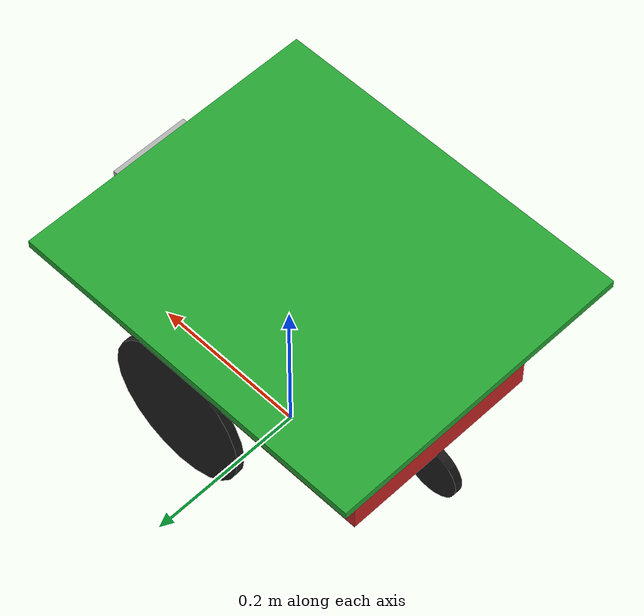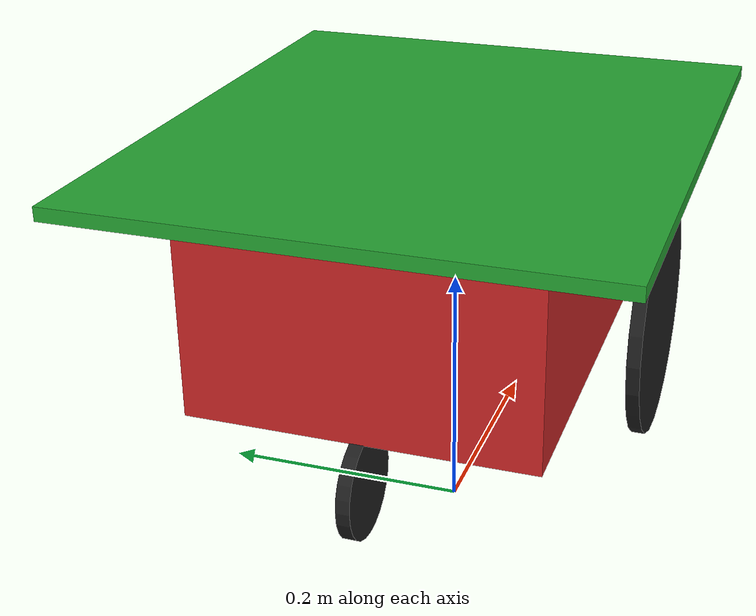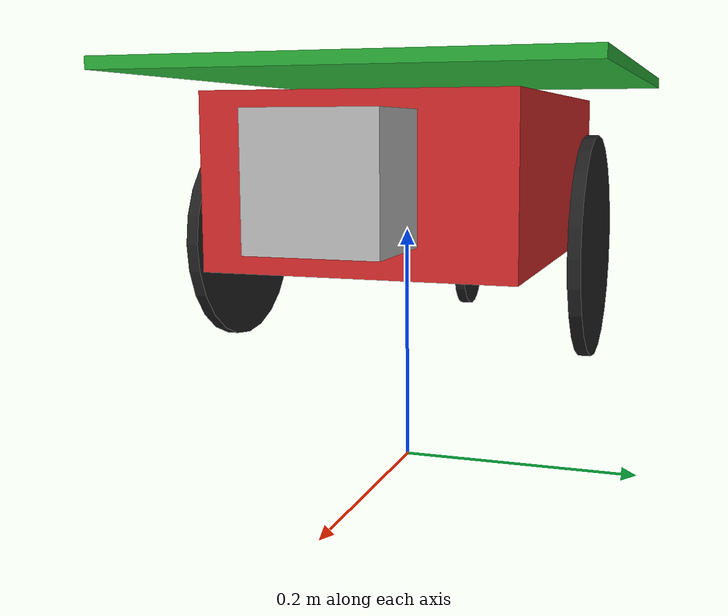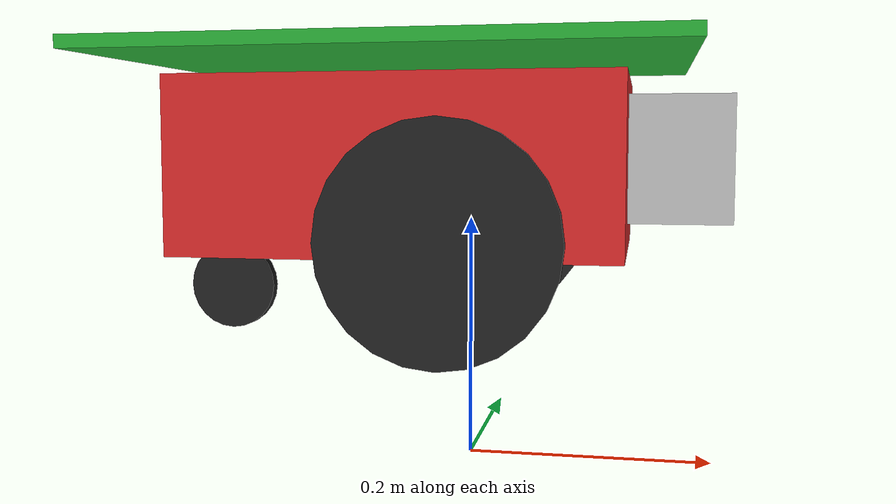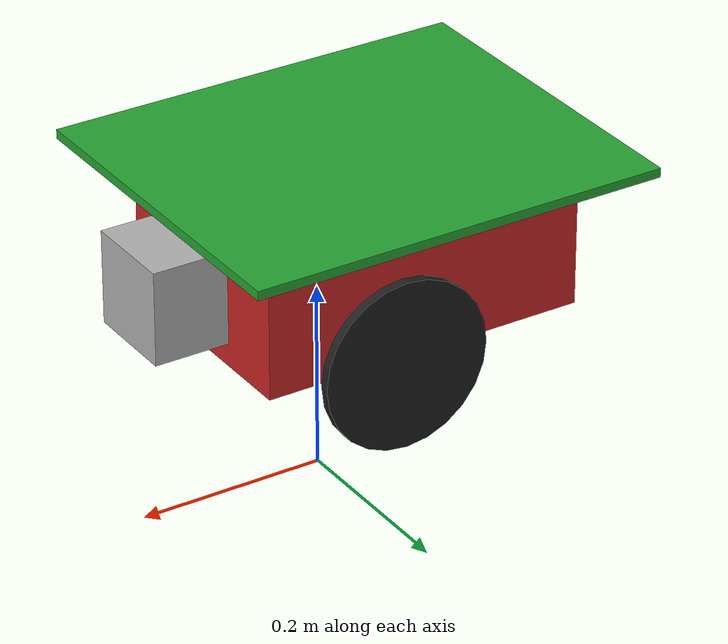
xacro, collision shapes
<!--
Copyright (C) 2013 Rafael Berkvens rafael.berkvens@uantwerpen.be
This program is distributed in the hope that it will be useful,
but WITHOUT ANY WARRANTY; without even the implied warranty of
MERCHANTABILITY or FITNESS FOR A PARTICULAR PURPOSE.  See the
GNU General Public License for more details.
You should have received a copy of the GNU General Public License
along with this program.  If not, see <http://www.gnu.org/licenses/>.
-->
<?xml version="1.0"?>

<robot name="pioneer3dx" xmlns:xacro="http://ros.org/wiki/xacro">

<xacro:include filename="$(find udm_pioneer_p3dx)/urdf/pioneer3dx_wheel.xacro"/>

  <!-- ground truth -->
	<gazebo>
		<plugin name="p3d_base_controller" filename="libgazebo_ros_p3d.so">
			<always_on>true</always_on>
			<update_rate>100.0</update_rate>
			<body_name>base_footprint</body_name>
			<topic_name>base_pose_ground_truth</topic_name>
			<gaussian_noise>0.01</gaussian_noise>
			<frame_name>map</frame_name>
			<!-- initialize odometry for fake localization -->
			<xyz_offset>0 0 0</xyz_offset>
			<rpy_offset>0 0 0</rpy_offset>
		</plugin>
	</gazebo>

    <gazebo reference="base_link">
   	<material>Gazebo/RedBright</material>
   </gazebo>

   <!-- Base footprint -->
   <link name="base_footprint"/>

	<joint name="base_joint" type="fixed">
    	<parent link="base_footprint"/>
    	<child link="base_link" />
    	<origin xyz="0.0 0.0 0.1" rpy="0 0 0"/>
  	</joint>

  <!-- chassis -->
	<link name="base_link">
		<inertial>
			<mass value="3.5" />
			<origin xyz="-0.05 0 0" />
			<inertia ixx="1" ixy="0" ixz="0" iyy="1" iyz="0" izz="1" />
		</inertial>

		<visual>
			<origin xyz="-0.045 0 0.148" rpy="0 0 0" />
			<geometry>
				<mesh filename="package://udm_pioneer_p3dx/p3dx_description/meshes/chassis.stl" />
			</geometry>
		</visual>

		<collision>
			<origin xyz="-0.045 0 0.145" rpy="0 0 0" />
			<geometry>
				<box size="0.35 0.25 0.14" />
			</geometry>
		</collision>
	</link>

 <gazebo reference="top_plate">
   	<material>Gazebo/Black</material>
   </gazebo>
  <!-- top_plate -->
	<link name="top_plate">
		<inertial>
			<mass value="0.01" />
			<origin xyz="0 0 0" />
			<inertia ixx="1" ixy="0" ixz="0" iyy="1" iyz="0" izz="1" />
		</inertial>

		<visual>
			<material name="green_color" />
			<origin xyz="0 0 0" rpy="0 0 0" />
			<geometry>
				 <mesh filename="package://udm_pioneer_p3dx/p3dx_description/meshes/top.stl" />
			</geometry>

		</visual>

		<collision name="top_plate_collision">
			<origin xyz="0.0 0 0" rpy="0 0 0" />
			<geometry>
				<box size="0.45 0.38 0.01" />
			</geometry>
		</collision>
	</link>

	<joint name="base_top_joint" type="fixed">
		<origin xyz="-0.045 0 0.234" rpy="0 0 0" />
		<parent link="base_link" />
		<child link="top_plate" />
	</joint>

 <gazebo reference="swivel">
   	<material>Gazebo/DarkGrey</material>
   </gazebo>

  <!-- swivel -->
	<link name="swivel">
		<inertial>
			<mass value="0.1" />
			<origin xyz="0 0 0" />
			<inertia ixx="0.01" ixy="0" ixz="0" iyy="0.01" iyz="0" izz="0.01" />
		</inertial>

		<visual>
			<origin xyz="0 0 0" rpy="0 0 0" />
			<geometry>
				<mesh filename="package://udm_pioneer_p3dx/p3dx_description/meshes/swivel.stl" />
			</geometry>
		</visual>

		<collision>
			<origin xyz="0.0 0.0 0.0" rpy="0.0 0.0 0.0" />
			<geometry>
				<box size="0 0 0" />
			</geometry>
		</collision>
	</link>

	<joint name="base_swivel_joint" type="continuous">
		<origin xyz="-0.185 0 0.055" rpy="0 0 0" />
		<axis xyz="0 0 1" />
		<anchor xyz="0 0 0" />
		<limit effort="100" velocity="100" k_velocity="0" />
		<joint_properties damping="0.0" friction="0.0" />
		<parent link="base_link" />
		<child link="swivel" />
	</joint>

	 <gazebo reference="center_hubcap">
   	<material>Gazebo/Grey</material>
   </gazebo>

  <!-- center_hubcap -->
	<link name="center_hubcap">
		<inertial>
			<mass value="0.01" />
			<origin xyz="0.0 0.0 0.0" />
			<inertia ixx="0.012411765597" ixy="-0.000711733678" ixz="0.00050272983"
				iyy="0.015218160428" iyz="-0.000004273467" izz="0.011763977943" />
		</inertial>

		<visual>
			<origin xyz="0.0 0.0 0.0" rpy="0.0 0.0 0.0" />
			<geometry>
				<mesh filename="package://udm_pioneer_p3dx/p3dx_description/meshes/center_hubcap.stl" />
			</geometry>
		</visual>

		<collision>
			<origin xyz="0.0 0.0 0.0" rpy="0.0 0.0 0.0" />
			<geometry>
				<box size="0 0 0" />
			</geometry>
		</collision>
	</link>

	<joint name="swivel_hubcap_joint" type="continuous">
		<axis xyz="0 1 0" />
		<anchor xyz="0 0 0" />
		<limit effort="100" velocity="100" k_velocity="0" />
		<joint_properties damping="0.0" friction="0.0" />
		<origin xyz="-0.026 0 -0.016" rpy="0 0 0" />
		<parent link="swivel" />
		<child link="center_wheel" />
	</joint>

	<gazebo reference="center_wheel">
   		<material>Gazebo/Black</material>
   </gazebo>

  <!-- center_wheel -->
	<link name="center_wheel">
		<inertial>
			<mass value="0.1" />
			<origin xyz="0.0 0.0 0.0" />
			<inertia ixx="0.012411765597" ixy="-0.000711733678" ixz="0.00050272983"
				iyy="0.015218160428" iyz="-0.000004273467" izz="0.011763977943" />
		</inertial>

		<visual>
			<origin xyz="0.0 0.0 0.0" rpy="0.0 0.0 0.0" />
			<geometry>
				<mesh filename="package://udm_pioneer_p3dx/p3dx_description/meshes/center_wheel.stl" />
			</geometry>
		</visual>

		<collision>
		    <origin xyz="0 0 0" rpy="-1.57079635 0 0"/>
		    <geometry>
				<cylinder radius="0.0375" length="0.01" />
		    </geometry>
		</collision>
	</link>

	<joint name="center_wheel_joint" type="fixed">
		<origin xyz="-0.0035 0.0 -0.001" rpy="0.0 0.0 0.0"/>
		<parent link="center_wheel"/>
		<child link="center_hubcap"/>
	</joint>

 <gazebo reference="front_sonar">
   	<material>Gazebo/Yellow</material>
   </gazebo>
  <!-- front_sonar -->
	<link name="front_sonar">
		<inertial>
			<mass value="0.0001" />
			<origin xyz="0 0 0" />
			<inertia ixx="1" ixy="0" ixz="0" iyy="1" iyz="0" izz="1" />
		</inertial>

		<visual>
			<origin rpy="0 0 0" xyz="0 0 0" />
			<geometry>
				<mesh filename="package://udm_pioneer_p3dx/p3dx_description/meshes/front_sonar.stl" />
			</geometry>
		</visual>

		<collision>
			<origin rpy="0 0 0" xyz="0 0 0" />
			<geometry>
				<box size="0 0 0" />
			</geometry>
		</collision>
	</link>

	<joint name="base_front_joint" type="fixed">
		<origin rpy="0 0 0" xyz="0.109 0 0.209" />
		<parent link="base_link" />
		<child link="front_sonar" />
	</joint>

	<!-- lms100 laser -->
	<link name="lms100">
		<inertial>
			<mass value="1e-5" />
			<origin xyz="0 0 0" rpy="0 0 0" />
			<inertia ixx="1e-6" ixy="0" ixz="0" iyy="1e-6" iyz="0" izz="1e-6" />
		</inertial>

		<visual>
			<origin xyz="0 0 0" rpy="0 0 0" />
			<geometry>
				<mesh filename="package://udm_pioneer_p3dx/p3dx_description/meshes/lms100.dae" />
			</geometry>
		</visual>

		<collision>
			<origin xyz="0 0 0" rpy="0 0 0" />
			<geometry>
				<box size="0.1 0.1 0.1" />
			</geometry>
		</collision>
	</link>

	<gazebo reference="lms100">
		<sensor type="ray" name="head_hokuyo_sensor">
			<pose>0 0 0 0 0 0</pose>
			<visualize>true</visualize>
			<update_rate>50</update_rate>
			<ray>
				<scan>
					<horizontal>
						<samples>360</samples>
						<resolution>1</resolution>
						<min_angle>-1.570796</min_angle>
						<max_angle>1.570796</max_angle>
					</horizontal>
				</scan>
				<range>
					<min>0.10</min>
					<max>30.0</max>
					<resolution>0.01</resolution>
				</range>
				<noise>
					<type>gaussian</type>
					<mean>0.0</mean>
					<stddev>0.01</stddev>
				</noise>
			</ray>
			<plugin name="gazebo_ros_head_hokuyo_controller" filename="libgazebo_ros_ray_sensor.so">
				<ros>
					<remapping>~/out:=scan</remapping>
				</ros>
				<output_type>sensor_msgs/LaserScan</output_type>
				<topic_name>sensor_msgs/LaserScan</topic_name>
				<frame_name>lms100</frame_name>
			</plugin>
		</sensor>
	</gazebo>

	<joint name="lms100_joint" type="fixed">
		<axis xyz="0 1 0" />
		<origin xyz="0.16 0 0.15" rpy="0 0 0" />
		<parent link="base_link" />
		<child link="lms100" />
	</joint>

    <gazebo reference="p3dx_left_wheel">
 	  	<material>Gazebo/Black</material>
		<mu1>0.5</mu1>
		<mu2>50.0</mu2>
		<kp>100000000.0</kp>
		<kd>1.0</kd>
   </gazebo>

      <gazebo reference="p3dx_left_hubcap">
   	<material>Gazebo/Yellow</material>
   </gazebo>

	<!-- LEFT WHEEL -->
		<!-- wheel -->
	<link name="p3dx_left_wheel">
		<inertial>
			<mass value="0.5" />
			<origin xyz="0 0 0" />
			<inertia ixx="0.012411765597" ixy="0" ixz="0" iyy="0.015218160428"
				iyz="0" izz="0.011763977943" />
		</inertial>

		<visual>
			<origin xyz="0 0 0" rpy="0 0 0" />
			<geometry>
				<mesh filename="package://udm_pioneer_p3dx/p3dx_description/meshes/left_wheel.stl" />
			</geometry>
		</visual>

		<collision>
			<origin xyz="0 0 0" rpy="-1.57079635 0 0" />
			<geometry>
				<cylinder radius="0.09" length="0.01" />
			</geometry>
		</collision>
	</link>

	<joint name="base_left_wheel_joint" type="continuous">
		<axis xyz="0 1 0" />
		<anchor xyz="0 0 0" />
		<limit effort="100" velocity="100" />
		<joint_properties damping="0.0" friction="0.0" />
		<origin xyz="0 0.158 0.091" rpy="0 0 0" />
		<parent link="base_link" />
		<child link="p3dx_left_wheel" />
	</joint>

	<link name="p3dx_left_hubcap">
		<inertial>
			<mass value="0.01" />
			<origin xyz="0 0 0" />
			<inertia ixx="0.012411765597" ixy="0" ixz="0" iyy="0.015218160428"
				iyz="0" izz="0.011763977943" />
		</inertial>

		<visual>
			<origin xyz="0 0 0" rpy="0 0 0" />
			<geometry>
				<mesh filename="package://udm_pioneer_p3dx/p3dx_description/meshes/left_hubcap.stl" />
			</geometry>
		</visual>
		<collision>
			<origin xyz="0 0 0" rpy="0 0 0" />
			<geometry>
				<box size="0 0 0" />
			</geometry>
		</collision>
	</link>

	<joint name="base_left_hubcap_joint" type="fixed">
		<origin xyz="0 0 0" rpy="0 0 0" />
		<parent link="p3dx_left_wheel" />
		<child link="p3dx_left_hubcap" />
	</joint>

    <transmission name="base_link_left_wheel_trans">
      <type>pr2_mechanism_model/SimpleTransmission</type>
      <joint name="base_left_wheel_joint" />
      <actuator name="base_left_wheel_motor">
        <hardware_interface>VelocityJointInterface</hardware_interface>
        <mechanical_reduction>${624/35 * 80/19}</mechanical_reduction>
      </actuator>
    </transmission>

     <gazebo reference="p3dx_right_wheel">
   	<material>Gazebo/Black</material>
	<mu1>0.5</mu1>
			<mu2>50.0</mu2>
			<kp>100000000.0</kp>
			<kd>1.0</kd>
   </gazebo>

      <gazebo reference="p3dx_right_hubcap">
   	<material>Gazebo/Yellow</material>
   </gazebo>

	<!-- RIGHT WHEEL -->
	<link name="p3dx_right_wheel">
		<inertial>
			<mass value="0.5" />
			<origin xyz="0 0 0" />
			<inertia ixx="0.012411765597" ixy="0" ixz="0" iyy="0.015218160428"
				iyz="0" izz="0.011763977943" />
		</inertial>

		<visual>
			<origin xyz="0 0 0" rpy="0 0 0" />
			<geometry>
				<mesh filename="package://udm_pioneer_p3dx/p3dx_description/meshes/right_wheel.stl" />
			</geometry>
		</visual>

		<collision>
			<origin xyz="0 0 0" rpy="-1.57079635 0 0" />
			<geometry>
				<cylinder radius="0.09" length="0.01" />
			</geometry>
		</collision>
	</link>

	<joint name="base_right_wheel_joint" type="continuous">
		<axis xyz="0 1 0" />
		<anchor xyz="0 0 0" />
		<limit effort="100" velocity="100" />
		<joint_properties damping="0.0" friction="0.0" />
		<origin xyz="0 -0.158 0.091" rpy="0 0 0" />
		<parent link="base_link" />
		<child link="p3dx_right_wheel" />
	</joint>

	<link name="p3dx_right_hubcap">
		<inertial>
			<mass value="0.01" />
			<origin xyz="0 0 0" />
			<inertia ixx="0.012411765597" ixy="0" ixz="0" iyy="0.015218160428"
				iyz="0" izz="0.011763977943" />
		</inertial>

		<visual>
			<origin xyz="0 0 0" rpy="0 0 0" />
			<geometry>
				<mesh filename="package://udm_pioneer_p3dx/p3dx_description/meshes/right_hubcap.stl" />
			</geometry>
		</visual>

		<collision>
			<origin xyz="0 0 0" rpy="0 0 0" />
			<geometry>
				<box size="0 0 0" />
			</geometry>
		</collision>

	</link>

	<joint name="base_right_hubcap_joint" type="fixed">
		<origin xyz="0 0 0" rpy="0 0 0" />
		<parent link="p3dx_right_wheel" />
		<child link="p3dx_right_hubcap" />
	</joint>

    <transmission name="base_link_right_wheel_trans">
      <type>pr2_mechanism_model/SimpleTransmission</type>
      <joint name="base_right_wheel_joint" />
      <actuator name="base_right_wheel_motor">
        <hardware_interface>VelocityJointInterface</hardware_interface>
        <mechanical_reduction>${-624/35 * 80/19}</mechanical_reduction>
      </actuator>
    </transmission>

  <!-- differential drive -->
  <gazebo>
    <plugin name="differential_drive_controller" filename="libgazebo_ros_diff_drive.so">
        <always_on>true</always_on>
        <update_rate>40</update_rate>
        <legacy_mode>false</legacy_mode>
        <left_joint>base_left_wheel_joint</left_joint>
        <right_joint>base_right_wheel_joint</right_joint>
        <wheel_separation>0.39</wheel_separation>
        <wheel_diameter>0.15</wheel_diameter>
        <torque>5</torque>
        <command_topic>cmd_vel</command_topic>
        <odometry_topic>odom</odometry_topic>
        <odometry_frame>odom</odometry_frame>
        <robot_base_frame>base_footprint</robot_base_frame>
        <publish_wheel_tf>false</publish_wheel_tf>
        <publish_wheel_joint_state>false</publish_wheel_joint_state>
        <ros_debug_level>na</ros_debug_level>
        <wheel_acceleration>0</wheel_acceleration>
        <wheel_torque>5</wheel_torque>
        <odometry_source>1</odometry_source>
        <publish_tf>1</publish_tf>
		<publish_odom>true</publish_odom>
		<publish_odom_tf>true</publish_odom_tf>
    </plugin>
</gazebo>

</robot>
